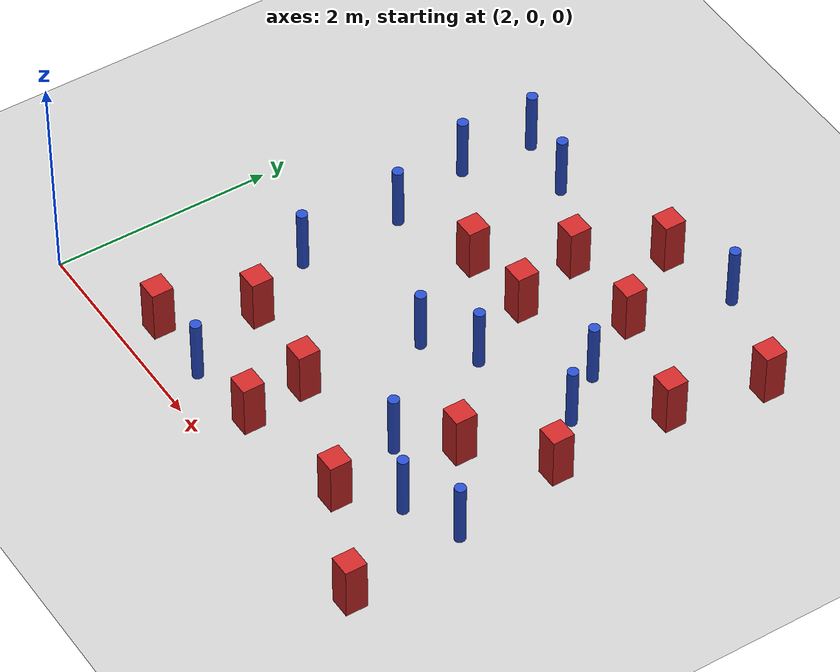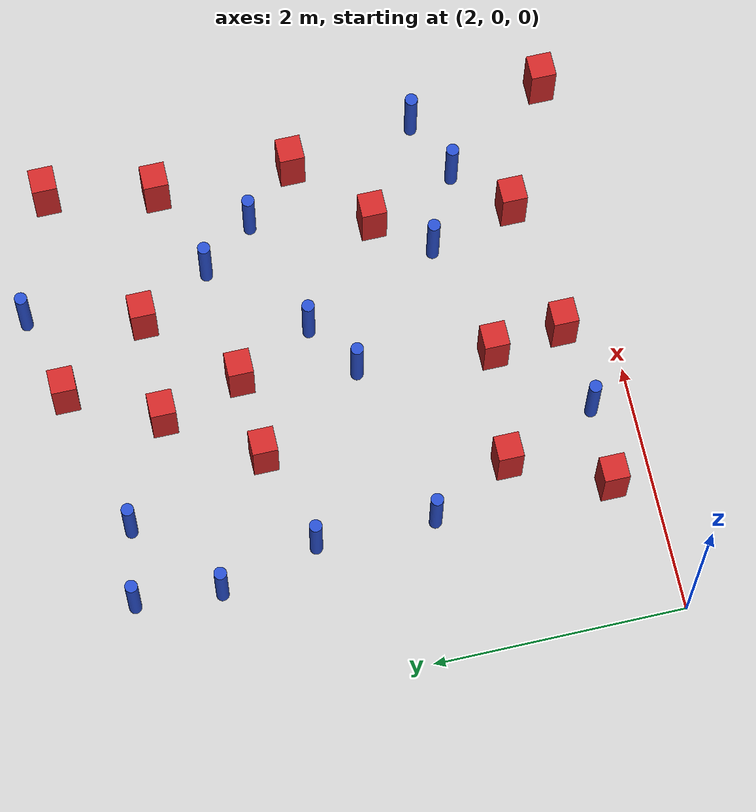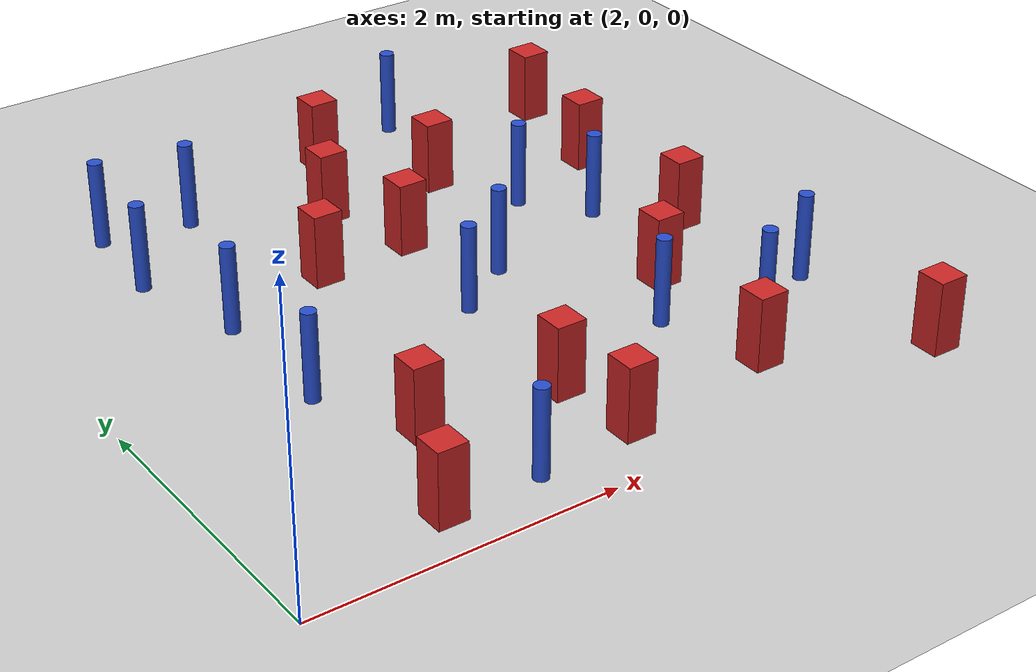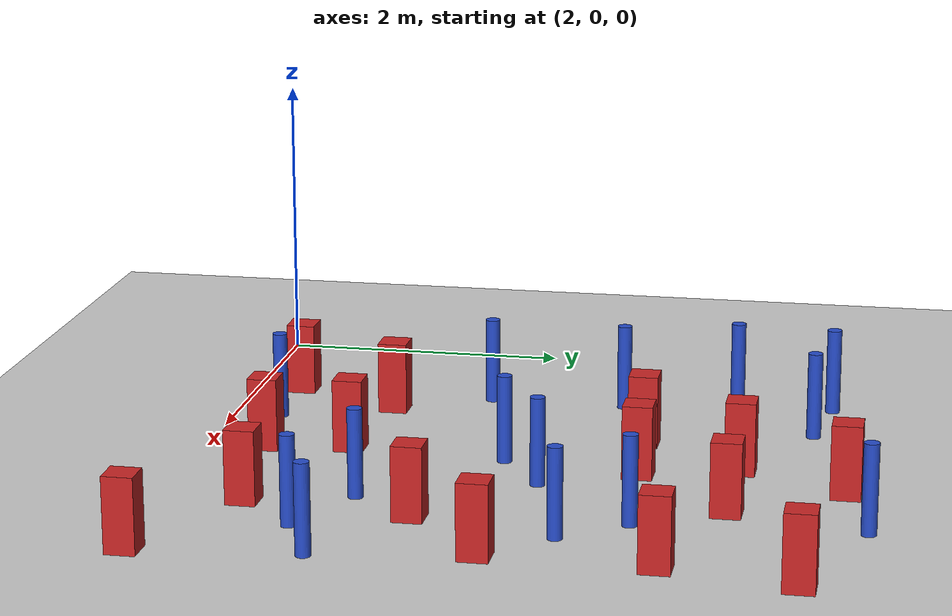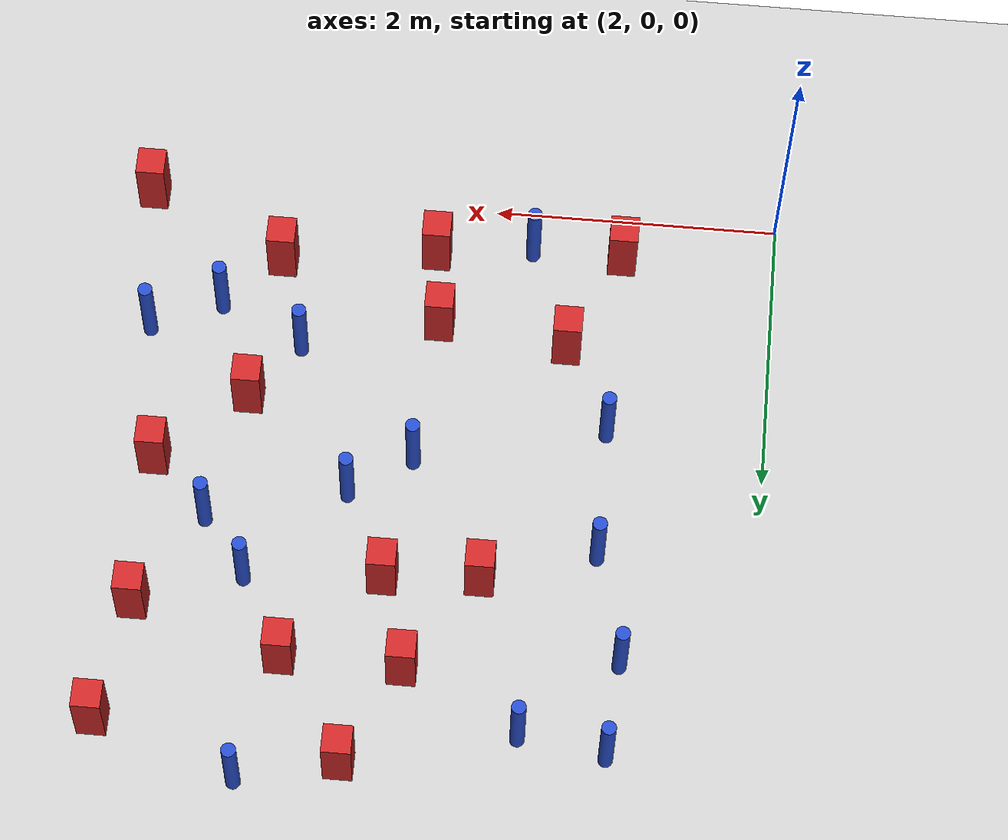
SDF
<sdf version="1.6">
 <world name="default">
  <model name="ground_plane">
   <static>1</static>
   <link name="link">
    <collision name="collision">
     <geometry><plane><normal>0 0 1</normal><size>100 100</size></plane></geometry>
     <surface><friction><ode><mu>100</mu><mu2>50</mu2></ode></friction></surface>
    </collision>
    <visual name="visual">
     <cast_shadows>0</cast_shadows>
     <geometry><plane><normal>0 0 1</normal><size>100 100</size></plane></geometry>
     <material>
      <ambient>1.0 1.0 1.0 1.0</ambient>
      <diffuse>0.8 0.8 0.8 1.0</diffuse>
      <specular>0.01 0.01 0.01 1.000000</specular>
     </material>
    </visual>
   </link>
  </model>
  <model name="pole_obstacle6">
   <static>true</static>
   <pose>4.85572318534 2.34125898473 -2.66029137441e-07 -5.69430205643e-07 6.84129966548e-07 -8.68349370881e-08</pose>
   <link name="link">
    <pose>0 0 0.3 0 -0 0</pose>
    <inertial>
     <mass>1</mass>
     <inertia><ixx>0.145833</ixx><ixy>0</ixy><ixz>0</ixz><iyy>0.145833</iyy><iyz>0</iyz><izz>0.125</izz></inertia>
    </inertial>
    <collision name="collision">
     <geometry><cylinder><radius>0.05</radius><length>.6</length></cylinder></geometry>
    </collision>
    <visual name="visual">
     <geometry><cylinder><radius>0.05</radius><length>.6</length></cylinder></geometry>
     <material>
      <script><name>Gazebo/Blue</name><uri>file://media/materials/scripts/gazebo.material</uri></script>
     </material>
    </visual>
   </link>
  </model>
  <model name="pole_obstacle21">
   <static>true</static>
   <pose>5.40762393656 4.50465931764 -2.66029137441e-07 -5.69430205655e-07 6.84129966534e-07 -8.68349370984e-08</pose>
   <link name="link">
    <pose>0 0 0.3 0 -0 0</pose>
    <inertial>
     <mass>1</mass>
     <inertia><ixx>0.145833</ixx><ixy>0</ixy><ixz>0</ixz><iyy>0.145833</iyy><iyz>0</iyz><izz>0.125</izz></inertia>
    </inertial>
    <collision name="collision">
     <geometry><cylinder><radius>0.05</radius><length>.6</length></cylinder></geometry>
    </collision>
    <visual name="visual">
     <geometry><cylinder><radius>0.05</radius><length>.6</length></cylinder></geometry>
     <material>
      <script><name>Gazebo/Blue</name><uri>file://media/materials/scripts/gazebo.material</uri></script>
     </material>
    </visual>
   </link>
  </model>
  <model name="square_post_obstacle22">
   <static>true</static>
   <pose>4.36004274654 3.6157950318 -7.80171244635e-07 7.17449752808e-06 -5.6639232126e-07 2.2715510512e-05</pose>
   <link name="link">
    <pose>0 0 0.25 0 -0 0</pose>
    <inertial>
     <mass>100</mass>
     <inertia>
      <ixx>0.166667</ixx>
      <ixy>0</ixy>
      <ixz>0</ixz>
      <iyy>0.166667</iyy>
      <iyz>0</iyz>
      <izz>0.166667</izz>
     </inertia>
    </inertial>
    <collision name="collision"><geometry><box><size>.2 .2 .5</size></box></geometry></collision>
    <visual name="visual">
     <geometry><box><size>.2 .2 .5</size></box></geometry>
     <material>
      <script><name>Gazebo/Red</name><uri>file://media/materials/scripts/gazebo.material</uri></script>
     </material>
    </visual>
   </link>
  </model>
  <model name="pole_obstacle34">
   <static>true</static>
   <pose>3.10384391882 2.67245468472 -2.66029137441e-07 -5.69430205643e-07 6.84129966548e-07 -8.68349370903e-08</pose>
   <link name="link">
    <pose>0 0 0.3 0 -0 0</pose>
    <inertial>
     <mass>1</mass>
     <inertia><ixx>0.145833</ixx><ixy>0</ixy><ixz>0</ixz><iyy>0.145833</iyy><iyz>0</iyz><izz>0.125</izz></inertia>
    </inertial>
    <collision name="collision">
     <geometry><cylinder><radius>0.05</radius><length>.6</length></cylinder></geometry>
    </collision>
    <visual name="visual">
     <geometry><cylinder><radius>0.05</radius><length>.6</length></cylinder></geometry>
     <material>
      <script><name>Gazebo/Blue</name><uri>file://media/materials/scripts/gazebo.material</uri></script>
     </material>
    </visual>
   </link>
  </model>
  <model name="pole_obstacle49">
   <static>true</static>
   <pose>5.29447376615 1.23253659601 -2.66029137441e-07 -5.69430205627e-07 6.84129966567e-07 -8.68349370776e-08</pose>
   <link name="link">
    <pose>0 0 0.3 0 -0 0</pose>
    <inertial>
     <mass>1</mass>
     <inertia><ixx>0.145833</ixx><ixy>0</ixy><ixz>0</ixz><iyy>0.145833</iyy><iyz>0</iyz><izz>0.125</izz></inertia>
    </inertial>
    <collision name="collision">
     <geometry><cylinder><radius>0.05</radius><length>.6</length></cylinder></geometry>
    </collision>
    <visual name="visual">
     <geometry><cylinder><radius>0.05</radius><length>.6</length></cylinder></geometry>
     <material>
      <script><name>Gazebo/Blue</name><uri>file://media/materials/scripts/gazebo.material</uri></script>
     </material>
    </visual>
   </link>
  </model>
  <model name="pole_obstacle53">
   <static>true</static>
   <pose>3.54613413945 4.03960462503 -2.66029137441e-07 -5.69430205635e-07 6.84129966557e-07 -8.68349370832e-08</pose>
   <link name="link">
    <pose>0 0 0.3 0 -0 0</pose>
    <inertial>
     <mass>1</mass>
     <inertia><ixx>0.145833</ixx><ixy>0</ixy><ixz>0</ixz><iyy>0.145833</iyy><iyz>0</iyz><izz>0.125</izz></inertia>
    </inertial>
    <collision name="collision">
     <geometry><cylinder><radius>0.05</radius><length>.6</length></cylinder></geometry>
    </collision>
    <visual name="visual">
     <geometry><cylinder><radius>0.05</radius><length>.6</length></cylinder></geometry>
     <material>
      <script><name>Gazebo/Blue</name><uri>file://media/materials/scripts/gazebo.material</uri></script>
     </material>
    </visual>
   </link>
  </model>
  <model name="square_post_obstacle40">
   <static>true</static>
   <pose>5.19089357855 3.6046396595 -7.80171244635e-07 7.17449752808e-06 -5.6639232126e-07 2.2715510512e-05</pose>
   <link name="link">
    <pose>0 0 0.25 0 -0 0</pose>
    <inertial>
     <mass>100</mass>
     <inertia>
      <ixx>0.166667</ixx>
      <ixy>0</ixy>
      <ixz>0</ixz>
      <iyy>0.166667</iyy>
      <iyz>0</iyz>
      <izz>0.166667</izz>
     </inertia>
    </inertial>
    <collision name="collision"><geometry><box><size>.2 .2 .5</size></box></geometry></collision>
    <visual name="visual">
     <geometry><box><size>.2 .2 .5</size></box></geometry>
     <material>
      <script><name>Gazebo/Red</name><uri>file://media/materials/scripts/gazebo.material</uri></script>
     </material>
    </visual>
   </link>
  </model>
  <model name="square_post_obstacle43">
   <static>true</static>
   <pose>3.426418821 1.08181021489 -7.80171244635e-07 7.17449752808e-06 -5.6639232126e-07 2.2715510512e-05</pose>
   <link name="link">
    <pose>0 0 0.25 0 -0 0</pose>
    <inertial>
     <mass>100</mass>
     <inertia>
      <ixx>0.166667</ixx>
      <ixy>0</ixy>
      <ixz>0</ixz>
      <iyy>0.166667</iyy>
      <iyz>0</iyz>
      <izz>0.166667</izz>
     </inertia>
    </inertial>
    <collision name="collision"><geometry><box><size>.2 .2 .5</size></box></geometry></collision>
    <visual name="visual">
     <geometry><box><size>.2 .2 .5</size></box></geometry>
     <material>
      <script><name>Gazebo/Red</name><uri>file://media/materials/scripts/gazebo.material</uri></script>
     </material>
    </visual>
   </link>
  </model>
  <model name="square_post_obstacle46">
   <static>true</static>
   <pose>5.49356925223 0.547908798125 -7.80171244635e-07 7.17449752808e-06 -5.6639232126e-07 2.2715510512e-05</pose>
   <link name="link">
    <pose>0 0 0.25 0 -0 0</pose>
    <inertial>
     <mass>100</mass>
     <inertia>
      <ixx>0.166667</ixx>
      <ixy>0</ixy>
      <ixz>0</ixz>
      <iyy>0.166667</iyy>
      <iyz>0</iyz>
      <izz>0.166667</izz>
     </inertia>
    </inertial>
    <collision name="collision"><geometry><box><size>.2 .2 .5</size></box></geometry></collision>
    <visual name="visual">
     <geometry><box><size>.2 .2 .5</size></box></geometry>
     <material>
      <script><name>Gazebo/Red</name><uri>file://media/materials/scripts/gazebo.material</uri></script>
     </material>
    </visual>
   </link>
  </model>
  <model name="pole_obstacle68">
   <static>true</static>
   <pose>5.81796552223 2.61014844014 -2.66029137441e-07 -5.69430205643e-07 6.84129966548e-07 -8.68349370881e-08</pose>
   <link name="link">
    <pose>0 0 0.3 0 -0 0</pose>
    <inertial>
     <mass>1</mass>
     <inertia><ixx>0.145833</ixx><ixy>0</ixy><ixz>0</ixz><iyy>0.145833</iyy><iyz>0</iyz><izz>0.125</izz></inertia>
    </inertial>
    <collision name="collision">
     <geometry><cylinder><radius>0.05</radius><length>.6</length></cylinder></geometry>
    </collision>
    <visual name="visual">
     <geometry><cylinder><radius>0.05</radius><length>.6</length></cylinder></geometry>
     <material>
      <script><name>Gazebo/Blue</name><uri>file://media/materials/scripts/gazebo.material</uri></script>
     </material>
    </visual>
   </link>
  </model>
  <model name="pole_obstacle84">
   <static>true</static>
   <pose>6.37673134827 1.16288997143 -2.66029137441e-07 -5.69430205627e-07 6.84129966567e-07 -8.68349370776e-08</pose>
   <link name="link">
    <pose>0 0 0.3 0 -0 0</pose>
    <inertial>
     <mass>1</mass>
     <inertia><ixx>0.145833</ixx><ixy>0</ixy><ixz>0</ixz><iyy>0.145833</iyy><iyz>0</iyz><izz>0.125</izz></inertia>
    </inertial>
    <collision name="collision">
     <geometry><cylinder><radius>0.05</radius><length>.6</length></cylinder></geometry>
    </collision>
    <visual name="visual">
     <geometry><cylinder><radius>0.05</radius><length>.6</length></cylinder></geometry>
     <material>
      <script><name>Gazebo/Blue</name><uri>file://media/materials/scripts/gazebo.material</uri></script>
     </material>
    </visual>
   </link>
  </model>
  <model name="pole_obstacle88">
   <static>true</static>
   <pose>5.88395862595 0.94307463825 -2.66029137441e-07 -5.69430205635e-07 6.84129966557e-07 -8.68349370823e-08</pose>
   <link name="link">
    <pose>0 0 0.3 0 -0 0</pose>
    <inertial>
     <mass>1</mass>
     <inertia><ixx>0.145833</ixx><ixy>0</ixy><ixz>0</ixz><iyy>0.145833</iyy><iyz>0</iyz><izz>0.125</izz></inertia>
    </inertial>
    <collision name="collision">
     <geometry><cylinder><radius>0.05</radius><length>.6</length></cylinder></geometry>
    </collision>
    <visual name="visual">
     <geometry><cylinder><radius>0.05</radius><length>.6</length></cylinder></geometry>
     <material>
      <script><name>Gazebo/Blue</name><uri>file://media/materials/scripts/gazebo.material</uri></script>
     </material>
    </visual>
   </link>
  </model>
  <model name="square_post_obstacle100">
   <static>true</static>
   <pose>4.40381497937 0.40298393964 -7.80171244635e-07 7.17449752808e-06 -5.6639232126e-07 2.2715510512e-05</pose>
   <link name="link">
    <pose>0 0 0.25 0 -0 0</pose>
    <inertial>
     <mass>100</mass>
     <inertia>
      <ixx>0.166667</ixx>
      <ixy>0</ixy>
      <ixz>0</ixz>
      <iyy>0.166667</iyy>
      <iyz>0</iyz>
      <izz>0.166667</izz>
     </inertia>
    </inertial>
    <collision name="collision"><geometry><box><size>.2 .2 .5</size></box></geometry></collision>
    <visual name="visual">
     <geometry><box><size>.2 .2 .5</size></box></geometry>
     <material>
      <script><name>Gazebo/Red</name><uri>file://media/materials/scripts/gazebo.material</uri></script>
     </material>
    </visual>
   </link>
  </model>
  <model name="square_post_obstacle103">
   <static>true</static>
   <pose>3.08293874781 0.331719060958 -7.80171244635e-07 7.17449752808e-06 -5.6639232126e-07 2.2715510512e-05</pose>
   <link name="link">
    <pose>0 0 0.25 0 -0 0</pose>
    <inertial>
     <mass>100</mass>
     <inertia>
      <ixx>0.166667</ixx>
      <ixy>0</ixy>
      <ixz>0</ixz>
      <iyy>0.166667</iyy>
      <iyz>0</iyz>
      <izz>0.166667</izz>
     </inertia>
    </inertial>
    <collision name="collision"><geometry><box><size>.2 .2 .5</size></box></geometry></collision>
    <visual name="visual">
     <geometry><box><size>.2 .2 .5</size></box></geometry>
     <material>
      <script><name>Gazebo/Red</name><uri>file://media/materials/scripts/gazebo.material</uri></script>
     </material>
    </visual>
   </link>
  </model>
  <model name="square_post_obstacle107">
   <static>true</static>
   <pose>4.55396546435 2.96197729748 -7.80171244635e-07 7.17449752808e-06 -5.6639232126e-07 2.2715510512e-05</pose>
   <link name="link">
    <pose>0 0 0.25 0 -0 0</pose>
    <inertial>
     <mass>100</mass>
     <inertia>
      <ixx>0.166667</ixx>
      <ixy>0</ixy>
      <ixz>0</ixz>
      <iyy>0.166667</iyy>
      <iyz>0</iyz>
      <izz>0.166667</izz>
     </inertia>
    </inertial>
    <collision name="collision"><geometry><box><size>.2 .2 .5</size></box></geometry></collision>
    <visual name="visual">
     <geometry><box><size>.2 .2 .5</size></box></geometry>
     <material>
      <script><name>Gazebo/Red</name><uri>file://media/materials/scripts/gazebo.material</uri></script>
     </material>
    </visual>
   </link>
  </model>
  <model name="square_post_obstacle112">
   <static>true</static>
   <pose>3.88992888738 2.91476549189 -7.80171244635e-07 7.17449752808e-06 -5.6639232126e-07 2.2715510512e-05</pose>
   <link name="link">
    <pose>0 0 0.25 0 -0 0</pose>
    <inertial>
     <mass>100</mass>
     <inertia>
      <ixx>0.166667</ixx>
      <ixy>0</ixy>
      <ixz>0</ixz>
      <iyy>0.166667</iyy>
      <iyz>0</iyz>
      <izz>0.166667</izz>
     </inertia>
    </inertial>
    <collision name="collision"><geometry><box><size>.2 .2 .5</size></box></geometry></collision>
    <visual name="visual">
     <geometry><box><size>.2 .2 .5</size></box></geometry>
     <material>
      <script><name>Gazebo/Red</name><uri>file://media/materials/scripts/gazebo.material</uri></script>
     </material>
    </visual>
   </link>
  </model>
  <model name="square_post_obstacle119">
   <static>true</static>
   <pose>4.33545442418 0.972664450554 -7.80171244635e-07 7.17449752808e-06 -5.6639232126e-07 2.2715510512e-05</pose>
   <link name="link">
    <pose>0 0 0.25 0 -0 0</pose>
    <inertial>
     <mass>100</mass>
     <inertia>
      <ixx>0.166667</ixx>
      <ixy>0</ixy>
      <ixz>0</ixz>
      <iyy>0.166667</iyy>
      <iyz>0</iyz>
      <izz>0.166667</izz>
     </inertia>
    </inertial>
    <collision name="collision"><geometry><box><size>.2 .2 .5</size></box></geometry></collision>
    <visual name="visual">
     <geometry><box><size>.2 .2 .5</size></box></geometry>
     <material>
      <script><name>Gazebo/Red</name><uri>file://media/materials/scripts/gazebo.material</uri></script>
     </material>
    </visual>
   </link>
  </model>
  <model name="pole_obstacle122">
   <static>true</static>
   <pose>2.89895975173 3.45675731305 -2.66029137441e-07 -5.69430205643e-07 6.84129966548e-07 -8.68349370903e-08</pose>
   <link name="link">
    <pose>0 0 0.3 0 -0 0</pose>
    <inertial>
     <mass>1</mass>
     <inertia><ixx>0.145833</ixx><ixy>0</ixy><ixz>0</ixz><iyy>0.145833</iyy><iyz>0</iyz><izz>0.125</izz></inertia>
    </inertial>
    <collision name="collision">
     <geometry><cylinder><radius>0.05</radius><length>.6</length></cylinder></geometry>
    </collision>
    <visual name="visual">
     <geometry><cylinder><radius>0.05</radius><length>.6</length></cylinder></geometry>
     <material>
      <script><name>Gazebo/Blue</name><uri>file://media/materials/scripts/gazebo.material</uri></script>
     </material>
    </visual>
   </link>
  </model>
  <model name="square_post_obstacle131">
   <static>true</static>
   <pose>6.47801463315 0.0716659699364 -7.80171244635e-07 7.17449752808e-06 -5.6639232126e-07 2.2715510512e-05</pose>
   <link name="link">
    <pose>0 0 0.25 0 -0 0</pose>
    <inertial>
     <mass>100</mass>
     <inertia>
      <ixx>0.166667</ixx>
      <ixy>0</ixy>
      <ixz>0</ixz>
      <iyy>0.166667</iyy>
      <iyz>0</iyz>
      <izz>0.166667</izz>
     </inertia>
    </inertial>
    <collision name="collision"><geometry><box><size>.2 .2 .5</size></box></geometry></collision>
    <visual name="visual">
     <geometry><box><size>.2 .2 .5</size></box></geometry>
     <material>
      <script><name>Gazebo/Red</name><uri>file://media/materials/scripts/gazebo.material</uri></script>
     </material>
    </visual>
   </link>
  </model>
  <model name="square_post_obstacle134">
   <static>true</static>
   <pose>6.23178919463 3.28618995488 -7.80171244635e-07 7.17449752808e-06 -5.6639232126e-07 2.2715510512e-05</pose>
   <link name="link">
    <pose>0 0 0.25 0 -0 0</pose>
    <inertial>
     <mass>100</mass>
     <inertia>
      <ixx>0.166667</ixx>
      <ixy>0</ixy>
      <ixz>0</ixz>
      <iyy>0.166667</iyy>
      <iyz>0</iyz>
      <izz>0.166667</izz>
     </inertia>
    </inertial>
    <collision name="collision"><geometry><box><size>.2 .2 .5</size></box></geometry></collision>
    <visual name="visual">
     <geometry><box><size>.2 .2 .5</size></box></geometry>
     <material>
      <script><name>Gazebo/Red</name><uri>file://media/materials/scripts/gazebo.material</uri></script>
     </material>
    </visual>
   </link>
  </model>
  <model name="square_post_obstacle139">
   <static>true</static>
   <pose>6.39448574078 4.15082508585 -7.80171244635e-07 7.17449752808e-06 -5.6639232126e-07 2.2715510512e-05</pose>
   <link name="link">
    <pose>0 0 0.25 0 -0 0</pose>
    <inertial>
     <mass>100</mass>
     <inertia>
      <ixx>0.166667</ixx>
      <ixy>0</ixy>
      <ixz>0</ixz>
      <iyy>0.166667</iyy>
      <iyz>0</iyz>
      <izz>0.166667</izz>
     </inertia>
    </inertial>
    <collision name="collision"><geometry><box><size>.2 .2 .5</size></box></geometry></collision>
    <visual name="visual">
     <geometry><box><size>.2 .2 .5</size></box></geometry>
     <material>
      <script><name>Gazebo/Red</name><uri>file://media/materials/scripts/gazebo.material</uri></script>
     </material>
    </visual>
   </link>
  </model>
  <model name="pole_obstacle146">
   <static>true</static>
   <pose>2.94785090593 4.13257397243 -2.66029137441e-07 -5.69430205635e-07 6.84129966557e-07 -8.68349370832e-08</pose>
   <link name="link">
    <pose>0 0 0.3 0 -0 0</pose>
    <inertial>
     <mass>1</mass>
     <inertia><ixx>0.145833</ixx><ixy>0</ixy><ixz>0</ixz><iyy>0.145833</iyy><iyz>0</iyz><izz>0.125</izz></inertia>
    </inertial>
    <collision name="collision">
     <geometry><cylinder><radius>0.05</radius><length>.6</length></cylinder></geometry>
    </collision>
    <visual name="visual">
     <geometry><cylinder><radius>0.05</radius><length>.6</length></cylinder></geometry>
     <material>
      <script><name>Gazebo/Blue</name><uri>file://media/materials/scripts/gazebo.material</uri></script>
     </material>
    </visual>
   </link>
  </model>
  <model name="pole_obstacle152">
   <static>true</static>
   <pose>3.10279254938 1.72539105617 -2.66029137441e-07 -5.69430205626e-07 6.84129966567e-07 -8.68349370747e-08</pose>
   <link name="link">
    <pose>0 0 0.3 0 -0 0</pose>
    <inertial>
     <mass>1</mass>
     <inertia><ixx>0.145833</ixx><ixy>0</ixy><ixz>0</ixz><iyy>0.145833</iyy><iyz>0</iyz><izz>0.125</izz></inertia>
    </inertial>
    <collision name="collision">
     <geometry><cylinder><radius>0.05</radius><length>.6</length></cylinder></geometry>
    </collision>
    <visual name="visual">
     <geometry><cylinder><radius>0.05</radius><length>.6</length></cylinder></geometry>
     <material>
      <script><name>Gazebo/Blue</name><uri>file://media/materials/scripts/gazebo.material</uri></script>
     </material>
    </visual>
   </link>
  </model>
  <model name="square_post_obstacle180">
   <static>true</static>
   <pose>6.21908975658 2.18838528484 -7.80171244635e-07 7.17449752808e-06 -5.6639232126e-07 2.2715510512e-05</pose>
   <link name="link">
    <pose>0 0 0.25 0 -0 0</pose>
    <inertial>
     <mass>100</mass>
     <inertia>
      <ixx>0.166667</ixx>
      <ixy>0</ixy>
      <ixz>0</ixz>
      <iyy>0.166667</iyy>
      <iyz>0</iyz>
      <izz>0.166667</izz>
     </inertia>
    </inertial>
    <collision name="collision"><geometry><box><size>.2 .2 .5</size></box></geometry></collision>
    <visual name="visual">
     <geometry><box><size>.2 .2 .5</size></box></geometry>
     <material>
      <script><name>Gazebo/Red</name><uri>file://media/materials/scripts/gazebo.material</uri></script>
     </material>
    </visual>
   </link>
  </model>
  <model name="square_post_obstacle192">
   <static>true</static>
   <pose>5.61744662389 1.65668962141 -7.80171244635e-07 7.17449752808e-06 -5.6639232126e-07 2.2715510512e-05</pose>
   <link name="link">
    <pose>0 0 0.25 0 -0 0</pose>
    <inertial>
     <mass>100</mass>
     <inertia>
      <ixx>0.166667</ixx>
      <ixy>0</ixy>
      <ixz>0</ixz>
      <iyy>0.166667</iyy>
      <iyz>0</iyz>
      <izz>0.166667</izz>
     </inertia>
    </inertial>
    <collision name="collision"><geometry><box><size>.2 .2 .5</size></box></geometry></collision>
    <visual name="visual">
     <geometry><box><size>.2 .2 .5</size></box></geometry>
     <material>
      <script><name>Gazebo/Red</name><uri>file://media/materials/scripts/gazebo.material</uri></script>
     </material>
    </visual>
   </link>
  </model>
  <model name="pole_obstacle187">
   <static>true</static>
   <pose>3.71958324996 0.326977264827 -2.66029137441e-07 -5.69430205624e-07 6.8412996657e-07 -8.6834937075e-08</pose>
   <link name="link">
    <pose>0 0 0.3 0 -0 0</pose>
    <inertial>
     <mass>1</mass>
     <inertia><ixx>0.145833</ixx><ixy>0</ixy><ixz>0</ixz><iyy>0.145833</iyy><iyz>0</iyz><izz>0.125</izz></inertia>
    </inertial>
    <collision name="collision">
     <geometry><cylinder><radius>0.05</radius><length>.6</length></cylinder></geometry>
    </collision>
    <visual name="visual">
     <geometry><cylinder><radius>0.05</radius><length>.6</length></cylinder></geometry>
     <material>
      <script><name>Gazebo/Blue</name><uri>file://media/materials/scripts/gazebo.material</uri></script>
     </material>
    </visual>
   </link>
  </model>
  <model name="pole_obstacle188">
   <static>true</static>
   <pose>4.42635592959 2.04812612998 -2.66029137441e-07 -5.69430205632e-07 6.84129966561e-07 -8.68349370791e-08</pose>
   <link name="link">
    <pose>0 0 0.3 0 -0 0</pose>
    <inertial>
     <mass>1</mass>
     <inertia><ixx>0.145833</ixx><ixy>0</ixy><ixz>0</ixz><iyy>0.145833</iyy><iyz>0</iyz><izz>0.125</izz></inertia>
    </inertial>
    <collision name="collision">
     <geometry><cylinder><radius>0.05</radius><length>.6</length></cylinder></geometry>
    </collision>
    <visual name="visual">
     <geometry><cylinder><radius>0.05</radius><length>.6</length></cylinder></geometry>
     <material>
      <script><name>Gazebo/Blue</name><uri>file://media/materials/scripts/gazebo.material</uri></script>
     </material>
    </visual>
   </link>
  </model>
  <model name="pole_obstacle204">
   <static>true</static>
   <pose>5.50518800168 3.03152204031 -2.66029137441e-07 -5.69430205643e-07 6.84129966548e-07 -8.68349370881e-08</pose>
   <link name="link">
    <pose>0 0 0.3 0 -0 0</pose>
    <inertial>
     <mass>1</mass>
     <inertia><ixx>0.145833</ixx><ixy>0</ixy><ixz>0</ixz><iyy>0.145833</iyy><iyz>0</iyz><izz>0.125</izz></inertia>
    </inertial>
    <collision name="collision">
     <geometry><cylinder><radius>0.05</radius><length>.6</length></cylinder></geometry>
    </collision>
    <visual name="visual">
     <geometry><cylinder><radius>0.05</radius><length>.6</length></cylinder></geometry>
     <material>
      <script><name>Gazebo/Blue</name><uri>file://media/materials/scripts/gazebo.material</uri></script>
     </material>
    </visual>
   </link>
  </model>
  <model name="square_post_obstacle223">
   <static>true</static>
   <pose>4.71755004101 4.32645997169 -7.80171244635e-07 7.17449752808e-06 -5.6639232126e-07 2.2715510512e-05</pose>
   <link name="link">
    <pose>0 0 0.25 0 -0 0</pose>
    <inertial>
     <mass>100</mass>
     <inertia>
      <ixx>0.166667</ixx>
      <ixy>0</ixy>
      <ixz>0</ixz>
      <iyy>0.166667</iyy>
      <iyz>0</iyz>
      <izz>0.166667</izz>
     </inertia>
    </inertial>
    <collision name="collision"><geometry><box><size>.2 .2 .5</size></box></geometry></collision>
    <visual name="visual">
     <geometry><box><size>.2 .2 .5</size></box></geometry>
     <material>
      <script><name>Gazebo/Red</name><uri>file://media/materials/scripts/gazebo.material</uri></script>
     </material>
    </visual>
   </link>
  </model>
 </world>
</sdf>
